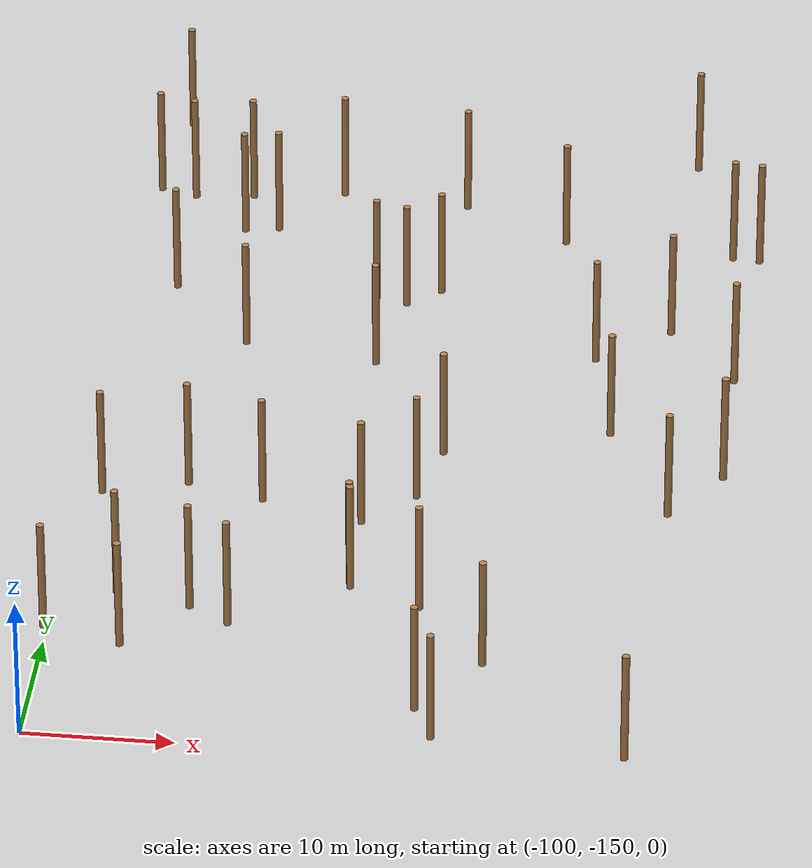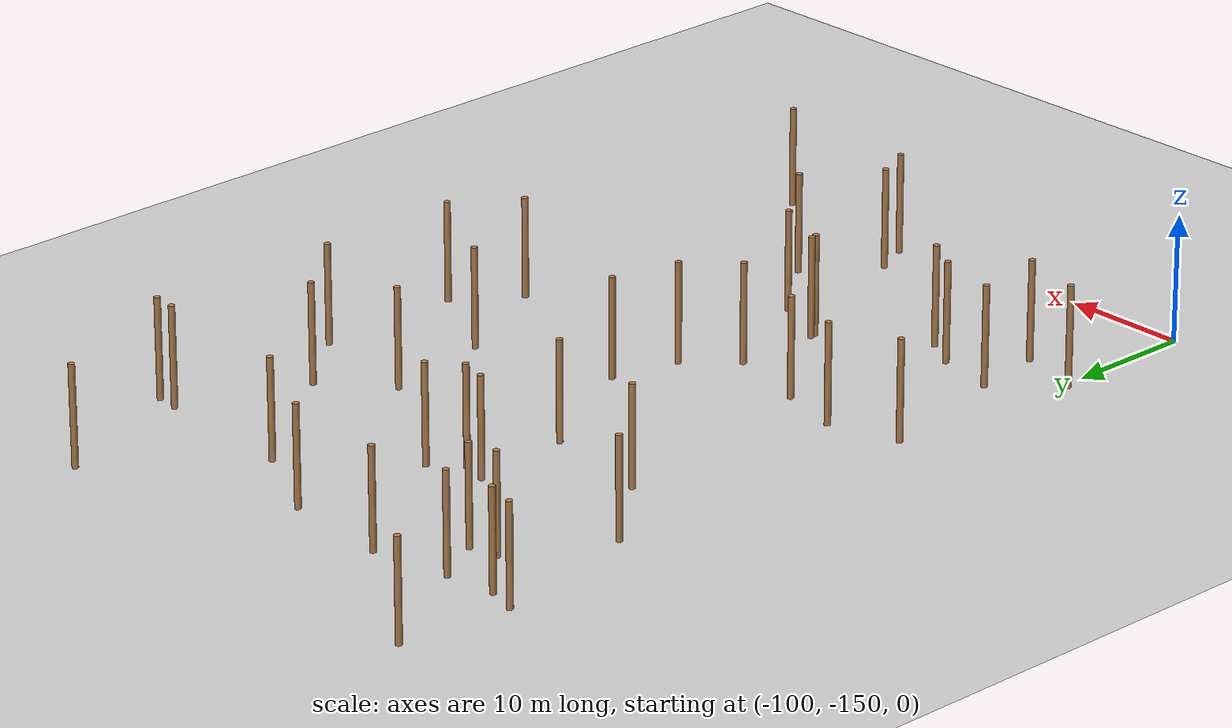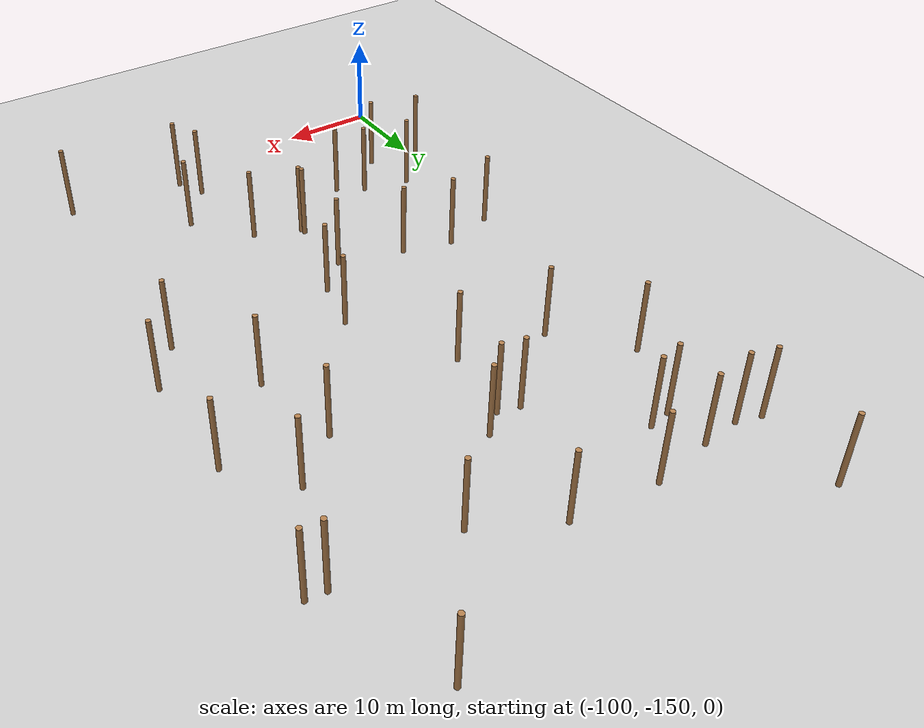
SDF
<sdf version="1.5">
 <world name="padure_tactica">
  <include><uri>model://sun</uri></include>
  <include><uri>model://ground_plane</uri></include>
  <model name="tree_28">
   <static>true</static>
   <pose>-81.07 -124.14 4.0 0 0 0</pose>
   <link name="link">
    <collision name="collision">
     <geometry><cylinder><radius>0.25</radius><length>8.0</length></cylinder></geometry>
    </collision>
    <visual name="visual">
     <geometry><cylinder><radius>0.25</radius><length>8.0</length></cylinder></geometry>
     <material>
      <script><uri>file://media/materials/scripts/gazebo.material</uri><name>Gazebo/Wood</name></script>
     </material>
    </visual>
   </link>
  </model>
  <model name="tree_39">
   <static>true</static>
   <pose>-56.97 -89.07 4.0 0 0 0</pose>
   <link name="link">
    <collision name="collision">
     <geometry><cylinder><radius>0.25</radius><length>8.0</length></cylinder></geometry>
    </collision>
    <visual name="visual">
     <geometry><cylinder><radius>0.25</radius><length>8.0</length></cylinder></geometry>
     <material>
      <script><uri>file://media/materials/scripts/gazebo.material</uri><name>Gazebo/Wood</name></script>
     </material>
    </visual>
   </link>
  </model>
  <model name="tree_123">
   <static>true</static>
   <pose>-60.89 -121.07 4.0 0 0 0</pose>
   <link name="link">
    <collision name="collision">
     <geometry><cylinder><radius>0.25</radius><length>8.0</length></cylinder></geometry>
    </collision>
    <visual name="visual">
     <geometry><cylinder><radius>0.25</radius><length>8.0</length></cylinder></geometry>
     <material>
      <script><uri>file://media/materials/scripts/gazebo.material</uri><name>Gazebo/Wood</name></script>
     </material>
    </visual>
   </link>
  </model>
  <model name="tree_199">
   <static>true</static>
   <pose>-93.37 -88.83 4.0 0 0 0</pose>
   <link name="link">
    <collision name="collision">
     <geometry><cylinder><radius>0.25</radius><length>8.0</length></cylinder></geometry>
    </collision>
    <visual name="visual">
     <geometry><cylinder><radius>0.25</radius><length>8.0</length></cylinder></geometry>
     <material>
      <script><uri>file://media/materials/scripts/gazebo.material</uri><name>Gazebo/Wood</name></script>
     </material>
    </visual>
   </link>
  </model>
  <model name="tree_201">
   <static>true</static>
   <pose>-78.07 -84.09 4.0 0 0 0</pose>
   <link name="link">
    <collision name="collision">
     <geometry><cylinder><radius>0.25</radius><length>8.0</length></cylinder></geometry>
    </collision>
    <visual name="visual">
     <geometry><cylinder><radius>0.25</radius><length>8.0</length></cylinder></geometry>
     <material>
      <script><uri>file://media/materials/scripts/gazebo.material</uri><name>Gazebo/Wood</name></script>
     </material>
    </visual>
   </link>
  </model>
  <model name="tree_223">
   <static>true</static>
   <pose>-95.06 -139.71 4.0 0 0 0</pose>
   <link name="link">
    <collision name="collision">
     <geometry><cylinder><radius>0.25</radius><length>8.0</length></cylinder></geometry>
    </collision>
    <visual name="visual">
     <geometry><cylinder><radius>0.25</radius><length>8.0</length></cylinder></geometry>
     <material>
      <script><uri>file://media/materials/scripts/gazebo.material</uri><name>Gazebo/Wood</name></script>
     </material>
    </visual>
   </link>
  </model>
  <model name="tree_239">
   <static>true</static>
   <pose>-73.92 -147.67 4.0 0 0 0</pose>
   <link name="link">
    <collision name="collision">
     <geometry><cylinder><radius>0.25</radius><length>8.0</length></cylinder></geometry>
    </collision>
    <visual name="visual">
     <geometry><cylinder><radius>0.25</radius><length>8.0</length></cylinder></geometry>
     <material>
      <script><uri>file://media/materials/scripts/gazebo.material</uri><name>Gazebo/Wood</name></script>
     </material>
    </visual>
   </link>
  </model>
  <model name="tree_262">
   <static>true</static>
   <pose>-91.03 -88.39 4.0 0 0 0</pose>
   <link name="link">
    <collision name="collision">
     <geometry><cylinder><radius>0.25</radius><length>8.0</length></cylinder></geometry>
    </collision>
    <visual name="visual">
     <geometry><cylinder><radius>0.25</radius><length>8.0</length></cylinder></geometry>
     <material>
      <script><uri>file://media/materials/scripts/gazebo.material</uri><name>Gazebo/Wood</name></script>
     </material>
    </visual>
   </link>
  </model>
  <model name="tree_277">
   <static>true</static>
   <pose>-98.99 -75.00 4.0 0 0 0</pose>
   <link name="link">
    <collision name="collision">
     <geometry><cylinder><radius>0.25</radius><length>8.0</length></cylinder></geometry>
    </collision>
    <visual name="visual">
     <geometry><cylinder><radius>0.25</radius><length>8.0</length></cylinder></geometry>
     <material>
      <script><uri>file://media/materials/scripts/gazebo.material</uri><name>Gazebo/Wood</name></script>
     </material>
    </visual>
   </link>
  </model>
  <model name="tree_303">
   <static>true</static>
   <pose>-75.28 -144.69 4.0 0 0 0</pose>
   <link name="link">
    <collision name="collision">
     <geometry><cylinder><radius>0.25</radius><length>8.0</length></cylinder></geometry>
    </collision>
    <visual name="visual">
     <geometry><cylinder><radius>0.25</radius><length>8.0</length></cylinder></geometry>
     <material>
      <script><uri>file://media/materials/scripts/gazebo.material</uri><name>Gazebo/Wood</name></script>
     </material>
    </visual>
   </link>
  </model>
  <model name="tree_308">
   <static>true</static>
   <pose>-76.17 -133.56 4.0 0 0 0</pose>
   <link name="link">
    <collision name="collision">
     <geometry><cylinder><radius>0.25</radius><length>8.0</length></cylinder></geometry>
    </collision>
    <visual name="visual">
     <geometry><cylinder><radius>0.25</radius><length>8.0</length></cylinder></geometry>
     <material>
      <script><uri>file://media/materials/scripts/gazebo.material</uri><name>Gazebo/Wood</name></script>
     </material>
    </visual>
   </link>
  </model>
  <model name="tree_312">
   <static>true</static>
   <pose>-78.76 -95.29 4.0 0 0 0</pose>
   <link name="link">
    <collision name="collision">
     <geometry><cylinder><radius>0.25</radius><length>8.0</length></cylinder></geometry>
    </collision>
    <visual name="visual">
     <geometry><cylinder><radius>0.25</radius><length>8.0</length></cylinder></geometry>
     <material>
      <script><uri>file://media/materials/scripts/gazebo.material</uri><name>Gazebo/Wood</name></script>
     </material>
    </visual>
   </link>
  </model>
  <model name="tree_353">
   <static>true</static>
   <pose>-61.47 -148.56 4.0 0 0 0</pose>
   <link name="link">
    <collision name="collision">
     <geometry><cylinder><radius>0.25</radius><length>8.0</length></cylinder></geometry>
    </collision>
    <visual name="visual">
     <geometry><cylinder><radius>0.25</radius><length>8.0</length></cylinder></geometry>
     <material>
      <script><uri>file://media/materials/scripts/gazebo.material</uri><name>Gazebo/Wood</name></script>
     </material>
    </visual>
   </link>
  </model>
  <model name="tree_439">
   <static>true</static>
   <pose>-57.65 -104.50 4.0 0 0 0</pose>
   <link name="link">
    <collision name="collision">
     <geometry><cylinder><radius>0.25</radius><length>8.0</length></cylinder></geometry>
    </collision>
    <visual name="visual">
     <geometry><cylinder><radius>0.25</radius><length>8.0</length></cylinder></geometry>
     <material>
      <script><uri>file://media/materials/scripts/gazebo.material</uri><name>Gazebo/Wood</name></script>
     </material>
    </visual>
   </link>
  </model>
  <model name="tree_467">
   <static>true</static>
   <pose>-76.51 -115.32 4.0 0 0 0</pose>
   <link name="link">
    <collision name="collision">
     <geometry><cylinder><radius>0.25</radius><length>8.0</length></cylinder></geometry>
    </collision>
    <visual name="visual">
     <geometry><cylinder><radius>0.25</radius><length>8.0</length></cylinder></geometry>
     <material>
      <script><uri>file://media/materials/scripts/gazebo.material</uri><name>Gazebo/Wood</name></script>
     </material>
    </visual>
   </link>
  </model>
  <model name="tree_486">
   <static>true</static>
   <pose>-82.29 -104.83 4.0 0 0 0</pose>
   <link name="link">
    <collision name="collision">
     <geometry><cylinder><radius>0.25</radius><length>8.0</length></cylinder></geometry>
    </collision>
    <visual name="visual">
     <geometry><cylinder><radius>0.25</radius><length>8.0</length></cylinder></geometry>
     <material>
      <script><uri>file://media/materials/scripts/gazebo.material</uri><name>Gazebo/Wood</name></script>
     </material>
    </visual>
   </link>
  </model>
  <model name="tree_512">
   <static>true</static>
   <pose>-96.08 -133.84 4.0 0 0 0</pose>
   <link name="link">
    <collision name="collision">
     <geometry><cylinder><radius>0.25</radius><length>8.0</length></cylinder></geometry>
    </collision>
    <visual name="visual">
     <geometry><cylinder><radius>0.25</radius><length>8.0</length></cylinder></geometry>
     <material>
      <script><uri>file://media/materials/scripts/gazebo.material</uri><name>Gazebo/Wood</name></script>
     </material>
    </visual>
   </link>
  </model>
  <model name="tree_517">
   <static>true</static>
   <pose>-67.30 -102.82 4.0 0 0 0</pose>
   <link name="link">
    <collision name="collision">
     <geometry><cylinder><radius>0.25</radius><length>8.0</length></cylinder></geometry>
    </collision>
    <visual name="visual">
     <geometry><cylinder><radius>0.25</radius><length>8.0</length></cylinder></geometry>
     <material>
      <script><uri>file://media/materials/scripts/gazebo.material</uri><name>Gazebo/Wood</name></script>
     </material>
    </visual>
   </link>
  </model>
  <model name="tree_518">
   <static>true</static>
   <pose>-77.74 -120.77 4.0 0 0 0</pose>
   <link name="link">
    <collision name="collision">
     <geometry><cylinder><radius>0.25</radius><length>8.0</length></cylinder></geometry>
    </collision>
    <visual name="visual">
     <geometry><cylinder><radius>0.25</radius><length>8.0</length></cylinder></geometry>
     <material>
      <script><uri>file://media/materials/scripts/gazebo.material</uri><name>Gazebo/Wood</name></script>
     </material>
    </visual>
   </link>
  </model>
  <model name="tree_532">
   <static>true</static>
   <pose>-97.17 -96.63 4.0 0 0 0</pose>
   <link name="link">
    <collision name="collision">
     <geometry><cylinder><radius>0.25</radius><length>8.0</length></cylinder></geometry>
    </collision>
    <visual name="visual">
     <geometry><cylinder><radius>0.25</radius><length>8.0</length></cylinder></geometry>
     <material>
      <script><uri>file://media/materials/scripts/gazebo.material</uri><name>Gazebo/Wood</name></script>
     </material>
    </visual>
   </link>
  </model>
  <model name="tree_541">
   <static>true</static>
   <pose>-93.09 -120.81 4.0 0 0 0</pose>
   <link name="link">
    <collision name="collision">
     <geometry><cylinder><radius>0.25</radius><length>8.0</length></cylinder></geometry>
    </collision>
    <visual name="visual">
     <geometry><cylinder><radius>0.25</radius><length>8.0</length></cylinder></geometry>
     <material>
      <script><uri>file://media/materials/scripts/gazebo.material</uri><name>Gazebo/Wood</name></script>
     </material>
    </visual>
   </link>
  </model>
  <model name="tree_543">
   <static>true</static>
   <pose>-91.11 -135.01 4.0 0 0 0</pose>
   <link name="link">
    <collision name="collision">
     <geometry><cylinder><radius>0.25</radius><length>8.0</length></cylinder></geometry>
    </collision>
    <visual name="visual">
     <geometry><cylinder><radius>0.25</radius><length>8.0</length></cylinder></geometry>
     <material>
      <script><uri>file://media/materials/scripts/gazebo.material</uri><name>Gazebo/Wood</name></script>
     </material>
    </visual>
   </link>
  </model>
  <model name="tree_561">
   <static>true</static>
   <pose>-81.03 -131.14 4.0 0 0 0</pose>
   <link name="link">
    <collision name="collision">
     <geometry><cylinder><radius>0.25</radius><length>8.0</length></cylinder></geometry>
    </collision>
    <visual name="visual">
     <geometry><cylinder><radius>0.25</radius><length>8.0</length></cylinder></geometry>
     <material>
      <script><uri>file://media/materials/scripts/gazebo.material</uri><name>Gazebo/Wood</name></script>
     </material>
    </visual>
   </link>
  </model>
  <model name="tree_639">
   <static>true</static>
   <pose>-62.14 -77.15 4.0 0 0 0</pose>
   <link name="link">
    <collision name="collision">
     <geometry><cylinder><radius>0.25</radius><length>8.0</length></cylinder></geometry>
    </collision>
    <visual name="visual">
     <geometry><cylinder><radius>0.25</radius><length>8.0</length></cylinder></geometry>
     <material>
      <script><uri>file://media/materials/scripts/gazebo.material</uri><name>Gazebo/Wood</name></script>
     </material>
    </visual>
   </link>
  </model>
  <model name="tree_660">
   <static>true</static>
   <pose>-93.35 -84.29 4.0 0 0 0</pose>
   <link name="link">
    <collision name="collision">
     <geometry><cylinder><radius>0.25</radius><length>8.0</length></cylinder></geometry>
    </collision>
    <visual name="visual">
     <geometry><cylinder><radius>0.25</radius><length>8.0</length></cylinder></geometry>
     <material>
      <script><uri>file://media/materials/scripts/gazebo.material</uri><name>Gazebo/Wood</name></script>
     </material>
    </visual>
   </link>
  </model>
  <model name="tree_741">
   <static>true</static>
   <pose>-58.84 -88.86 4.0 0 0 0</pose>
   <link name="link">
    <collision name="collision">
     <geometry><cylinder><radius>0.25</radius><length>8.0</length></cylinder></geometry>
    </collision>
    <visual name="visual">
     <geometry><cylinder><radius>0.25</radius><length>8.0</length></cylinder></geometry>
     <material>
      <script><uri>file://media/materials/scripts/gazebo.material</uri><name>Gazebo/Wood</name></script>
     </material>
    </visual>
   </link>
  </model>
  <model name="tree_767">
   <static>true</static>
   <pose>-57.54 -116.31 4.0 0 0 0</pose>
   <link name="link">
    <collision name="collision">
     <geometry><cylinder><radius>0.25</radius><length>8.0</length></cylinder></geometry>
    </collision>
    <visual name="visual">
     <geometry><cylinder><radius>0.25</radius><length>8.0</length></cylinder></geometry>
     <material>
      <script><uri>file://media/materials/scripts/gazebo.material</uri><name>Gazebo/Wood</name></script>
     </material>
    </visual>
   </link>
  </model>
  <model name="tree_770">
   <static>true</static>
   <pose>-99.98 -83.99 4.0 0 0 0</pose>
   <link name="link">
    <collision name="collision">
     <geometry><cylinder><radius>0.25</radius><length>8.0</length></cylinder></geometry>
    </collision>
    <visual name="visual">
     <geometry><cylinder><radius>0.25</radius><length>8.0</length></cylinder></geometry>
     <material>
      <script><uri>file://media/materials/scripts/gazebo.material</uri><name>Gazebo/Wood</name></script>
     </material>
    </visual>
   </link>
  </model>
  <model name="tree_776">
   <static>true</static>
   <pose>-100.29 -138.21 4.0 0 0 0</pose>
   <link name="link">
    <collision name="collision">
     <geometry><cylinder><radius>0.25</radius><length>8.0</length></cylinder></geometry>
    </collision>
    <visual name="visual">
     <geometry><cylinder><radius>0.25</radius><length>8.0</length></cylinder></geometry>
     <material>
      <script><uri>file://media/materials/scripts/gazebo.material</uri><name>Gazebo/Wood</name></script>
     </material>
    </visual>
   </link>
  </model>
  <model name="tree_842">
   <static>true</static>
   <pose>-80.93 -131.65 4.0 0 0 0</pose>
   <link name="link">
    <collision name="collision">
     <geometry><cylinder><radius>0.25</radius><length>8.0</length></cylinder></geometry>
    </collision>
    <visual name="visual">
     <geometry><cylinder><radius>0.25</radius><length>8.0</length></cylinder></geometry>
     <material>
      <script><uri>file://media/materials/scripts/gazebo.material</uri><name>Gazebo/Wood</name></script>
     </material>
    </visual>
   </link>
  </model>
  <model name="tree_844">
   <static>true</static>
   <pose>-70.70 -88.01 4.0 0 0 0</pose>
   <link name="link">
    <collision name="collision">
     <geometry><cylinder><radius>0.25</radius><length>8.0</length></cylinder></geometry>
    </collision>
    <visual name="visual">
     <geometry><cylinder><radius>0.25</radius><length>8.0</length></cylinder></geometry>
     <material>
      <script><uri>file://media/materials/scripts/gazebo.material</uri><name>Gazebo/Wood</name></script>
     </material>
    </visual>
   </link>
  </model>
  <model name="tree_850">
   <static>true</static>
   <pose>-71.44 -139.33 4.0 0 0 0</pose>
   <link name="link">
    <collision name="collision">
     <geometry><cylinder><radius>0.25</radius><length>8.0</length></cylinder></geometry>
    </collision>
    <visual name="visual">
     <geometry><cylinder><radius>0.25</radius><length>8.0</length></cylinder></geometry>
     <material>
      <script><uri>file://media/materials/scripts/gazebo.material</uri><name>Gazebo/Wood</name></script>
     </material>
    </visual>
   </link>
  </model>
  <model name="tree_895">
   <static>true</static>
   <pose>-65.51 -111.86 4.0 0 0 0</pose>
   <link name="link">
    <collision name="collision">
     <geometry><cylinder><radius>0.25</radius><length>8.0</length></cylinder></geometry>
    </collision>
    <visual name="visual">
     <geometry><cylinder><radius>0.25</radius><length>8.0</length></cylinder></geometry>
     <material>
      <script><uri>file://media/materials/scripts/gazebo.material</uri><name>Gazebo/Wood</name></script>
     </material>
    </visual>
   </link>
  </model>
  <model name="tree_900">
   <static>true</static>
   <pose>-80.98 -97.18 4.0 0 0 0</pose>
   <link name="link">
    <collision name="collision">
     <geometry><cylinder><radius>0.25</radius><length>8.0</length></cylinder></geometry>
    </collision>
    <visual name="visual">
     <geometry><cylinder><radius>0.25</radius><length>8.0</length></cylinder></geometry>
     <material>
      <script><uri>file://media/materials/scripts/gazebo.material</uri><name>Gazebo/Wood</name></script>
     </material>
    </visual>
   </link>
  </model>
  <model name="tree_926">
   <static>true</static>
   <pose>-87.92 -122.23 4.0 0 0 0</pose>
   <link name="link">
    <collision name="collision">
     <geometry><cylinder><radius>0.25</radius><length>8.0</length></cylinder></geometry>
    </collision>
    <visual name="visual">
     <geometry><cylinder><radius>0.25</radius><length>8.0</length></cylinder></geometry>
     <material>
      <script><uri>file://media/materials/scripts/gazebo.material</uri><name>Gazebo/Wood</name></script>
     </material>
    </visual>
   </link>
  </model>
  <model name="tree_928">
   <static>true</static>
   <pose>-97.45 -84.75 4.0 0 0 0</pose>
   <link name="link">
    <collision name="collision">
     <geometry><cylinder><radius>0.25</radius><length>8.0</length></cylinder></geometry>
    </collision>
    <visual name="visual">
     <geometry><cylinder><radius>0.25</radius><length>8.0</length></cylinder></geometry>
     <material>
      <script><uri>file://media/materials/scripts/gazebo.material</uri><name>Gazebo/Wood</name></script>
     </material>
    </visual>
   </link>
  </model>
  <model name="tree_970">
   <static>true</static>
   <pose>-62.41 -98.87 4.0 0 0 0</pose>
   <link name="link">
    <collision name="collision">
     <geometry><cylinder><radius>0.25</radius><length>8.0</length></cylinder></geometry>
    </collision>
    <visual name="visual">
     <geometry><cylinder><radius>0.25</radius><length>8.0</length></cylinder></geometry>
     <material>
      <script><uri>file://media/materials/scripts/gazebo.material</uri><name>Gazebo/Wood</name></script>
     </material>
    </visual>
   </link>
  </model>
  <model name="tree_1028">
   <static>true</static>
   <pose>-86.94 -83.25 4.0 0 0 0</pose>
   <link name="link">
    <collision name="collision">
     <geometry><cylinder><radius>0.25</radius><length>8.0</length></cylinder></geometry>
    </collision>
    <visual name="visual">
     <geometry><cylinder><radius>0.25</radius><length>8.0</length></cylinder></geometry>
     <material>
      <script><uri>file://media/materials/scripts/gazebo.material</uri><name>Gazebo/Wood</name></script>
     </material>
    </visual>
   </link>
  </model>
  <model name="tree_1060">
   <static>true</static>
   <pose>-83.16 -96.59 4.0 0 0 0</pose>
   <link name="link">
    <collision name="collision">
     <geometry><cylinder><radius>0.25</radius><length>8.0</length></cylinder></geometry>
    </collision>
    <visual name="visual">
     <geometry><cylinder><radius>0.25</radius><length>8.0</length></cylinder></geometry>
     <material>
      <script><uri>file://media/materials/scripts/gazebo.material</uri><name>Gazebo/Wood</name></script>
     </material>
    </visual>
   </link>
  </model>
  <model name="tree_1120">
   <static>true</static>
   <pose>-88.39 -136.64 4.0 0 0 0</pose>
   <link name="link">
    <collision name="collision">
     <geometry><cylinder><radius>0.25</radius><length>8.0</length></cylinder></geometry>
    </collision>
    <visual name="visual">
     <geometry><cylinder><radius>0.25</radius><length>8.0</length></cylinder></geometry>
     <material>
      <script><uri>file://media/materials/scripts/gazebo.material</uri><name>Gazebo/Wood</name></script>
     </material>
    </visual>
   </link>
  </model>
  <model name="tree_1175">
   <static>true</static>
   <pose>-98.71 -122.41 4.0 0 0 0</pose>
   <link name="link">
    <collision name="collision">
     <geometry><cylinder><radius>0.25</radius><length>8.0</length></cylinder></geometry>
    </collision>
    <visual name="visual">
     <geometry><cylinder><radius>0.25</radius><length>8.0</length></cylinder></geometry>
     <material>
      <script><uri>file://media/materials/scripts/gazebo.material</uri><name>Gazebo/Wood</name></script>
     </material>
    </visual>
   </link>
  </model>
  <model name="tree_1195">
   <static>true</static>
   <pose>-91.45 -103.25 4.0 0 0 0</pose>
   <link name="link">
    <collision name="collision">
     <geometry><cylinder><radius>0.25</radius><length>8.0</length></cylinder></geometry>
    </collision>
    <visual name="visual">
     <geometry><cylinder><radius>0.25</radius><length>8.0</length></cylinder></geometry>
     <material>
      <script><uri>file://media/materials/scripts/gazebo.material</uri><name>Gazebo/Wood</name></script>
     </material>
    </visual>
   </link>
  </model>
 </world>
</sdf>
